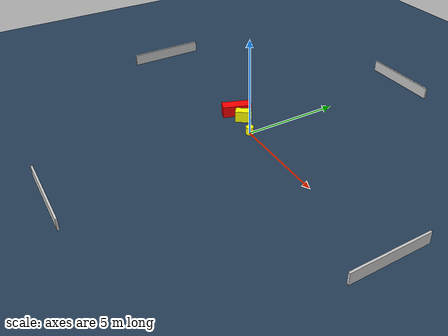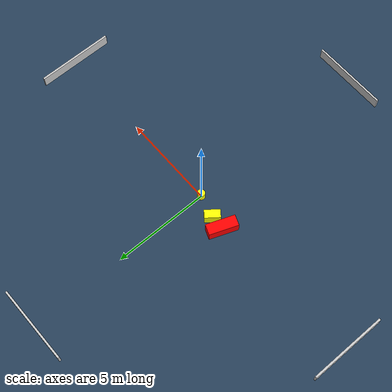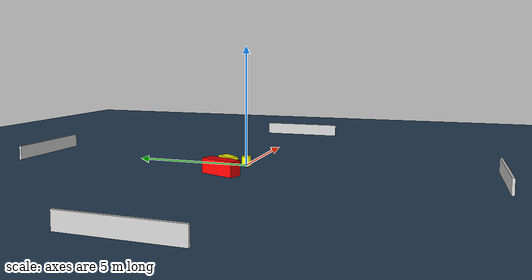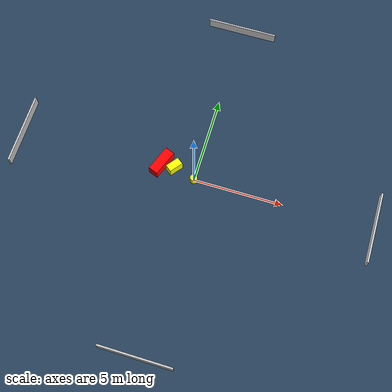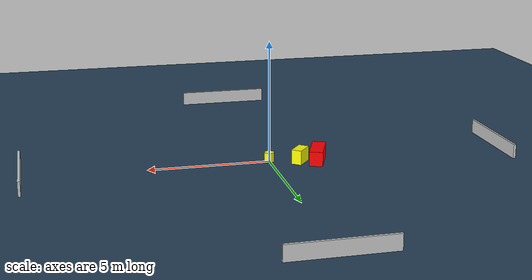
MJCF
<?xml version="1.0" ?>
<mujoco model="generated_environment">
  <option timestep="0.01" integrator="RK4" cone="elliptic"/>
  <default>
    <geom density="1"/>
  </default>
  <asset>
    <texture builtin="gradient" height="3072" name="skybox" rgb1="0.3 0.5 0.7" rgb2="0 0 0" type="skybox" width="512"/>
    <texture builtin="checker" height="300" name="groundplane" rgb1="0.2 0.3 0.4" rgb2="0.1 0.2 0.3" type="2d" width="300"/>
    <material name="groundplane" reflectance="0.2" texrepeat="5 5" texture="groundplane"/>
  </asset>
  <worldbody>
    <light dir="0 0 -1" directional="true" pos="0 0 1.5"/>
    <geom condim="3" friction="0.5 0.005 0.001" material="groundplane" name="floor" pos="0 0 0" size="0 0 0.05" type="plane"/>
    <body name="walls">
      <geom name="wall_1" condim="4" pos="-10.0 0.0 0.3" rgba="0.800000011920929 0.800000011920929 0.800000011920929 1.0" size="0.05 2.0 0.3" type="box"/>
      <geom name="wall_2" condim="4" pos="10.0 0.0 0.3" rgba="0.800000011920929 0.800000011920929 0.800000011920929 1.0" size="0.05 2.0 0.3" type="box"/>
      <geom name="wall_3" condim="4" pos="0.0 -10.0 0.3" rgba="0.800000011920929 0.800000011920929 0.800000011920929 1.0" size="2.0 0.05 0.3" type="box"/>
      <geom name="wall_4" condim="4" pos="0.0 10.0 0.3" rgba="0.800000011920929 0.800000011920929 0.800000011920929 1.0" size="2.0 0.05 0.3" type="box"/>
    </body>
    <body name="robot">
      <joint name="joint_x" type="slide" pos="0 0 0" axis="1 0 0"/>
      <joint name="joint_y" type="slide" pos="0 0 0" axis="0 1 0"/>
      <geom name="robot" type="cylinder" pos="0.0 0.0 0.2" size="0.2 0.2 0.0" mass="5.0" friction="1.0 0.005 0.0001" condim="4" rgba="1.0 1.0 0.0 1.0"/>
    </body>
    <body name="obstacle_1_movable">
      <geom name="obstacle_1_movable" condim="4" pos="-1.2209361794006164 0.35291834592084664 0.3" euler="0 0 322.11511698093017" friction="0.0 0.005 0.001" rgba="1.0 1.0 0.0 1.0" size="0.214214450715976 0.398250044603464 0.3" type="box" mass="0.1"/>
      <joint type="free"/>
    </body>
    <body name="obstacle_2_static">
      <geom name="obstacle_2_static" condim="4" pos="-1.956095805283856 0.3826160579762022 0.3" euler="0 0 249.06116428135653" friction="0.0 0.005 0.001" rgba="1.0 0.0 0.0 1.0" size="0.7542142239296521 0.2793803808514189 0.3" type="box"/>
    </body>
  </worldbody>
  <actuator>
    <motor name="actuator_x" joint="joint_x" gear="1" ctrlrange="-1 1"/>
    <motor name="actuator_y" joint="joint_y" gear="1" ctrlrange="-1 1"/>
  </actuator>
</mujoco>
